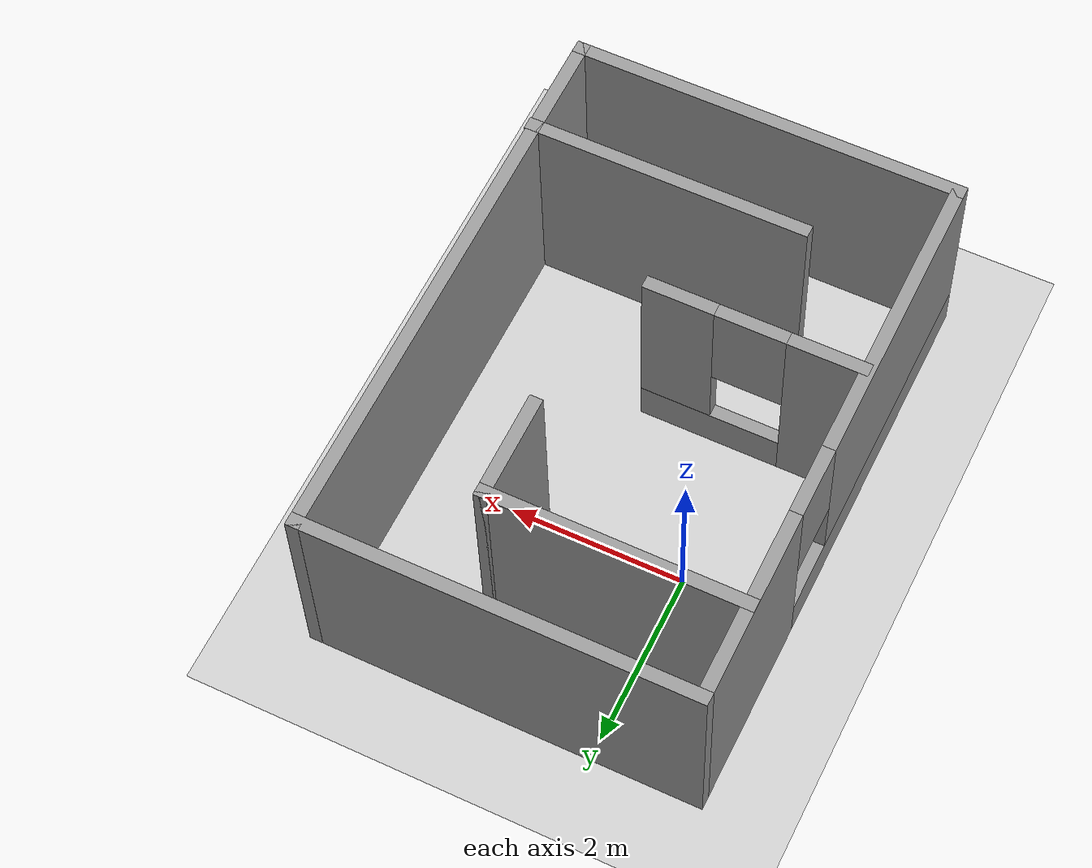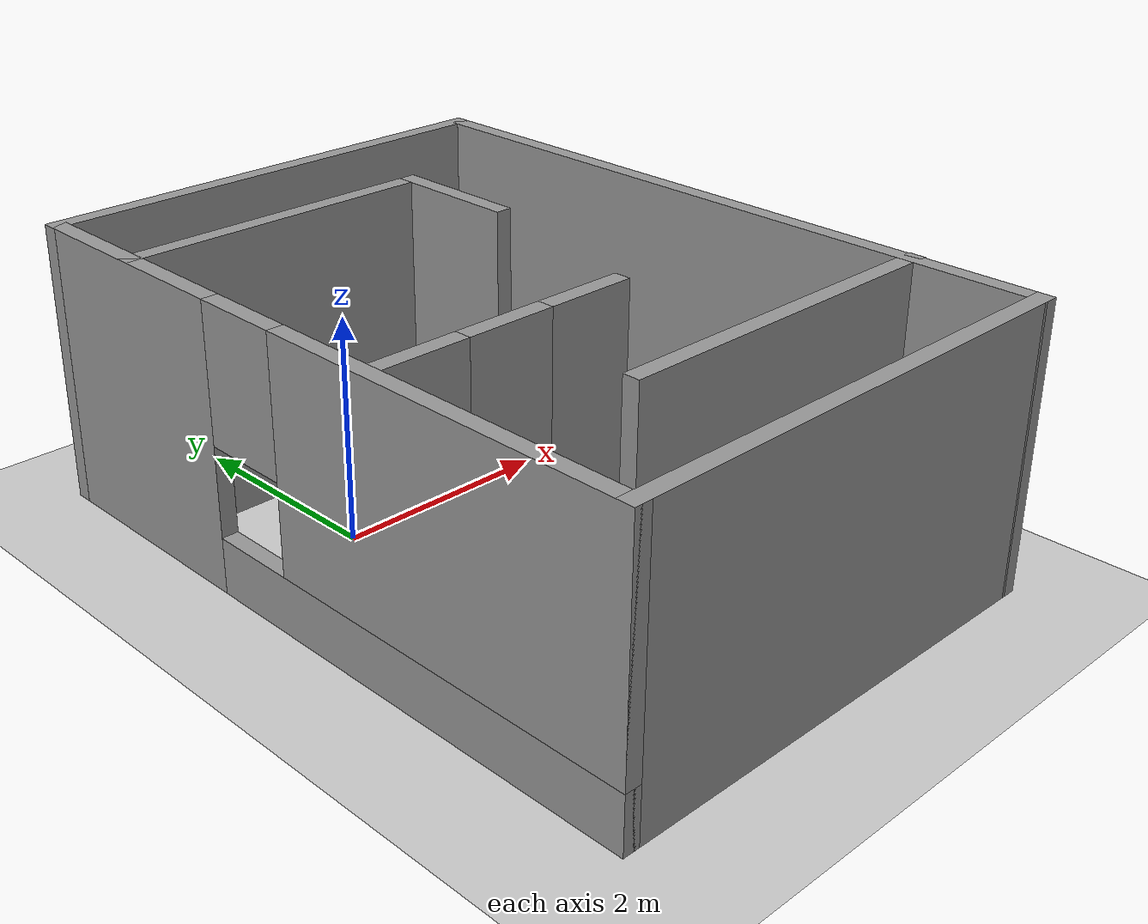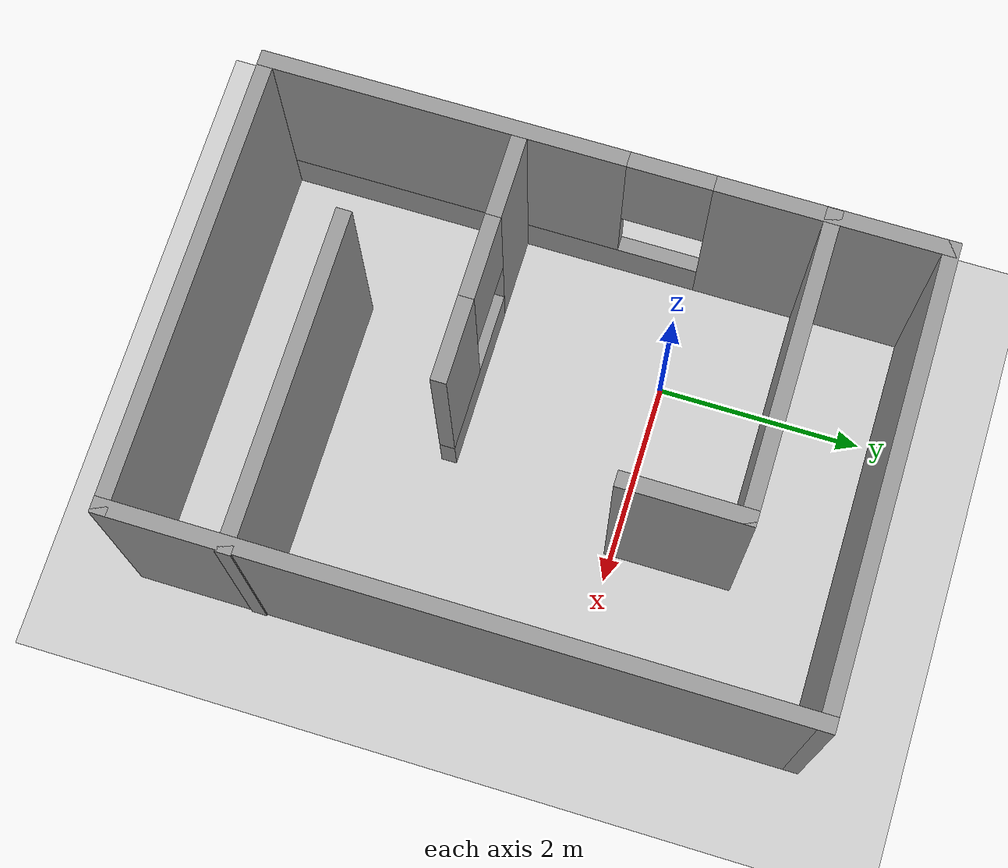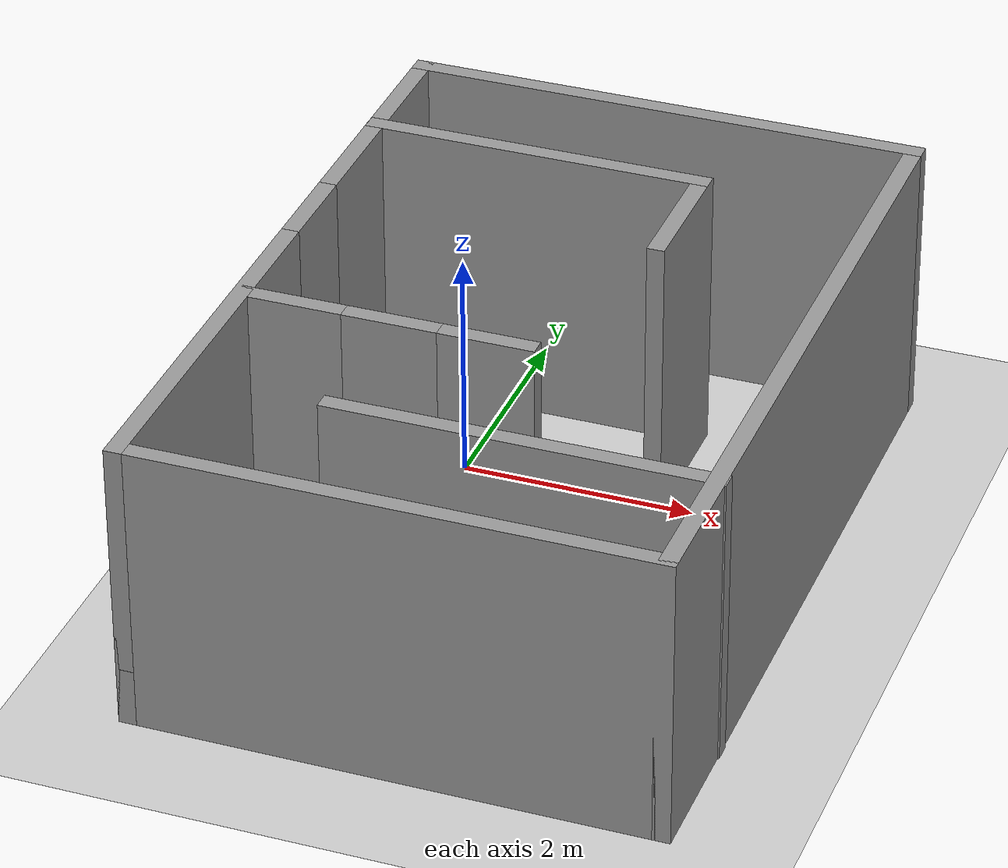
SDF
<sdf version="1.7">
 <world name="default">
  <light name="sun" type="directional">
   <pose>0 0 10 0 -0 0</pose>
   <diffuse>0.8 0.8 0.8 1</diffuse>
   <specular>0.2 0.2 0.2 1</specular>
   <attenuation>
    <range>1000</range>
    <constant>0.9</constant>
    <linear>0.01</linear>
    <quadratic>0.001</quadratic>
   </attenuation>
   <direction>-0.5 0.1 -0.9</direction>
   <spot><inner_angle>0</inner_angle><outer_angle>0</outer_angle><falloff>0</falloff></spot>
  </light>
  <model name="ground_plane">
   <static>1</static>
   <link name="link">
    <collision name="collision">
     <geometry><plane><normal>0 0 1</normal><size>100 100</size></plane></geometry>
     <surface>
      <contact><collide_bitmask>65535</collide_bitmask></contact>
      <friction><ode><mu>100</mu><mu2>50</mu2></ode></friction>
     </surface>
    </collision>
    <visual name="visual">
     <cast_shadows>0</cast_shadows>
     <geometry><plane><normal>0 0 1</normal><size>100 100</size></plane></geometry>
     <material>
      <script><uri>file://media/materials/scripts/gazebo.material</uri><name>Gazebo/Grey</name></script>
     </material>
    </visual>
   </link>
  </model>
  <gravity>0 0 -9.8</gravity>
  <magnetic_field>6e-06 2.3e-05 -4.2e-05</magnetic_field>
  <atmosphere type="adiabatic"/>
  <physics type="ode">
   <max_step_size>0.001</max_step_size>
   <real_time_factor>1</real_time_factor>
   <real_time_update_rate>1000</real_time_update_rate>
  </physics>
  <scene><ambient>0.4 0.4 0.4 1</ambient><background>0.7 0.7 0.7 1</background><shadows>1</shadows></scene>
  <spherical_coordinates>
   <surface_model>EARTH_WGS84</surface_model>
   <latitude_deg>0</latitude_deg>
   <longitude_deg>0</longitude_deg>
   <elevation>0</elevation>
   <heading_deg>0</heading_deg>
  </spherical_coordinates>
  <model name="room_1">
   <pose>1 -1 0 0 -0 0</pose>
   <link name="Wall_0">
    <collision name="Wall_0_Collision">
     <geometry><box><size>4.5 0.15 2.5</size></box></geometry>
     <pose>0 0 1.25 0 -0 0</pose>
    </collision>
    <visual name="Wall_0_Visual">
     <pose>0 0 1.25 0 -0 0</pose>
     <geometry><box><size>4.5 0.15 2.5</size></box></geometry>
     <material>
      <script><uri>file://media/materials/scripts/gazebo.material</uri><name>Gazebo/Grey</name></script>
      <ambient>1 1 1 1</ambient>
     </material>
     <meta><layer>0</layer></meta>
    </visual>
    <pose>-0.006746 -3.175 0 0 -0 0</pose>
   </link>
   <link name="Wall_1">
    <collision name="Wall_1_Collision">
     <geometry><box><size>6.5 0.15 2.5</size></box></geometry>
     <pose>0 0 1.25 0 -0 0</pose>
    </collision>
    <visual name="Wall_1_Visual">
     <pose>0 0 1.25 0 -0 0</pose>
     <geometry><box><size>6.5 0.15 2.5</size></box></geometry>
     <material>
      <script><uri>file://media/materials/scripts/gazebo.material</uri><name>Gazebo/Grey</name></script>
      <ambient>1 1 1 1</ambient>
     </material>
     <meta><layer>0</layer></meta>
    </visual>
    <pose>2.16825 -0 0 0 -0 1.5708</pose>
   </link>
   <link name="Wall_14">
    <collision name="Wall_14_Collision">
     <geometry><box><size>3 0.15 2.5</size></box></geometry>
     <pose>0 0 1.25 0 -0 0</pose>
    </collision>
    <visual name="Wall_14_Visual">
     <pose>0 0 1.25 0 -0 0</pose>
     <geometry><box><size>3 0.15 2.5</size></box></geometry>
     <material>
      <script><uri>file://media/materials/scripts/gazebo.material</uri><name>Gazebo/Grey</name></script>
      <ambient>1 1 1 1</ambient>
     </material>
     <meta><layer>0</layer></meta>
    </visual>
    <pose>-0.753592 2.10369 0 0 -0 0</pose>
   </link>
   <link name="Wall_15">
    <collision name="Wall_15_Collision">
     <geometry><box><size>1.25 0.15 2.5</size></box></geometry>
     <pose>0 0 1.25 0 -0 0</pose>
    </collision>
    <visual name="Wall_15_Visual">
     <pose>0 0 1.25 0 -0 0</pose>
     <geometry><box><size>1.25 0.15 2.5</size></box></geometry>
     <material>
      <script><uri>file://media/materials/scripts/gazebo.material</uri><name>Gazebo/Grey</name></script>
      <ambient>1 1 1 1</ambient>
     </material>
     <meta><layer>0</layer></meta>
    </visual>
    <pose>0.671408 1.55369 0 0 -0 -1.5708</pose>
   </link>
   <link name="Wall_18">
    <collision name="Wall_18_Collision">
     <geometry><box><size>3.25 0.15 2.5</size></box></geometry>
     <pose>0 0 1.25 0 -0 0</pose>
    </collision>
    <visual name="Wall_18_Visual">
     <pose>0 0 1.25 0 -0 0</pose>
     <geometry><box><size>3.25 0.15 2.5</size></box></geometry>
     <material>
      <script><uri>file://media/materials/scripts/gazebo.material</uri><name>Gazebo/Grey</name></script>
      <ambient>1 1 1 1</ambient>
     </material>
     <meta><layer>0</layer></meta>
    </visual>
    <pose>0.631747 -2.04901 0 0 -0 3.14159</pose>
   </link>
   <link name="Wall_2">
    <collision name="Wall_2_Collision">
     <geometry><box><size>4.5 0.15 2.5</size></box></geometry>
     <pose>0 0 1.25 0 -0 0</pose>
    </collision>
    <visual name="Wall_2_Visual">
     <pose>0 0 1.25 0 -0 0</pose>
     <geometry><box><size>4.5 0.15 2.5</size></box></geometry>
     <material>
      <script><uri>file://media/materials/scripts/gazebo.material</uri><name>Gazebo/Grey</name></script>
      <ambient>1 1 1 1</ambient>
     </material>
     <meta><layer>0</layer></meta>
    </visual>
    <pose>-0.006746 3.175 0 0 -0 3.14159</pose>
   </link>
   <link name="Wall_21">
    <pose>-0.959098 -0.773537 0 0 -0 0</pose>
    <visual name="Wall_21_Visual_0">
     <pose>-0.804426 0 1.25 0 -0 0</pose>
     <geometry><box><size>0.891149 0.15 2.5</size></box></geometry>
     <material>
      <script><uri>file://media/materials/scripts/gazebo.material</uri><name>Gazebo/Grey</name></script>
      <ambient>1 1 1 1</ambient>
     </material>
     <meta><layer>0</layer></meta>
    </visual>
    <collision name="Wall_21_Collision_0">
     <geometry><box><size>0.891149 0.15 2.5</size></box></geometry>
     <pose>-0.804426 0 1.25 0 -0 0</pose>
    </collision>
    <visual name="Wall_21_Visual_1">
     <pose>0.445574 0 0.25 0 -0 0</pose>
     <geometry><box><size>1.60885 0.15 0.5</size></box></geometry>
     <material>
      <script><uri>file://media/materials/scripts/gazebo.material</uri><name>Gazebo/Grey</name></script>
      <ambient>1 1 1 1</ambient>
     </material>
     <meta><layer>0</layer></meta>
    </visual>
    <collision name="Wall_21_Collision_1">
     <geometry><box><size>1.60885 0.15 0.5</size></box></geometry>
     <pose>0.445574 0 0.25 0 -0 0</pose>
    </collision>
    <visual name="Wall_21_Visual_2">
     <pose>0.845574 0 1.5 0 -0 0</pose>
     <geometry><box><size>0.808851 0.15 2</size></box></geometry>
     <material>
      <script><uri>file://media/materials/scripts/gazebo.material</uri><name>Gazebo/Grey</name></script>
      <ambient>1 1 1 1</ambient>
     </material>
     <meta><layer>0</layer></meta>
    </visual>
    <collision name="Wall_21_Collision_2">
     <geometry><box><size>0.808851 0.15 2</size></box></geometry>
     <pose>0.845574 0 1.5 0 -0 0</pose>
    </collision>
    <visual name="Wall_21_Visual_3">
     <pose>0.041149 0 1.9 0 -0 0</pose>
     <geometry><box><size>0.8 0.15 1.2</size></box></geometry>
     <material>
      <script><uri>file://media/materials/scripts/gazebo.material</uri><name>Gazebo/Grey</name></script>
      <ambient>1 1 1 1</ambient>
     </material>
     <meta><layer>0</layer></meta>
    </visual>
    <collision name="Wall_21_Collision_3">
     <geometry><box><size>0.8 0.15 1.2</size></box></geometry>
     <pose>0.041149 0 1.9 0 -0 0</pose>
    </collision>
   </link>
   <link name="Wall_3">
    <pose>-2.18175 -0 0 0 -0 -1.5708</pose>
    <visual name="Wall_3_Visual_0">
     <pose>-2.13529 0 1.25 0 -0 0</pose>
     <geometry><box><size>2.22941 0.15 2.5</size></box></geometry>
     <material>
      <script><uri>file://media/materials/scripts/gazebo.material</uri><name>Gazebo/Grey</name></script>
      <ambient>1 1 1 1</ambient>
     </material>
     <meta><layer>0</layer></meta>
    </visual>
    <collision name="Wall_3_Collision_0">
     <geometry><box><size>2.22941 0.15 2.5</size></box></geometry>
     <pose>-2.13529 0 1.25 0 -0 0</pose>
    </collision>
    <visual name="Wall_3_Visual_1">
     <pose>1.11471 0 0.25 0 -0 0</pose>
     <geometry><box><size>4.27058 0.15 0.5</size></box></geometry>
     <material>
      <script><uri>file://media/materials/scripts/gazebo.material</uri><name>Gazebo/Grey</name></script>
      <ambient>1 1 1 1</ambient>
     </material>
     <meta><layer>0</layer></meta>
    </visual>
    <collision name="Wall_3_Collision_1">
     <geometry><box><size>4.27058 0.15 0.5</size></box></geometry>
     <pose>1.11471 0 0.25 0 -0 0</pose>
    </collision>
    <visual name="Wall_3_Visual_2">
     <pose>1.51471 0 1.5 0 -0 0</pose>
     <geometry><box><size>3.47058 0.15 2</size></box></geometry>
     <material>
      <script><uri>file://media/materials/scripts/gazebo.material</uri><name>Gazebo/Grey</name></script>
      <ambient>1 1 1 1</ambient>
     </material>
     <meta><layer>0</layer></meta>
    </visual>
    <collision name="Wall_3_Collision_2">
     <geometry><box><size>3.47058 0.15 2</size></box></geometry>
     <pose>1.51471 0 1.5 0 -0 0</pose>
    </collision>
    <visual name="Wall_3_Visual_3">
     <pose>-0.620585 0 1.9 0 -0 0</pose>
     <geometry><box><size>0.8 0.15 1.2</size></box></geometry>
     <material>
      <script><uri>file://media/materials/scripts/gazebo.material</uri><name>Gazebo/Grey</name></script>
      <ambient>1 1 1 1</ambient>
     </material>
     <meta><layer>0</layer></meta>
    </visual>
    <collision name="Wall_3_Collision_3">
     <geometry><box><size>0.8 0.15 1.2</size></box></geometry>
     <pose>-0.620585 0 1.9 0 -0 0</pose>
    </collision>
   </link>
   <static>1</static>
  </model>
 </world>
</sdf>
